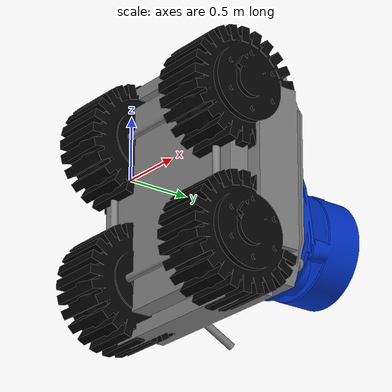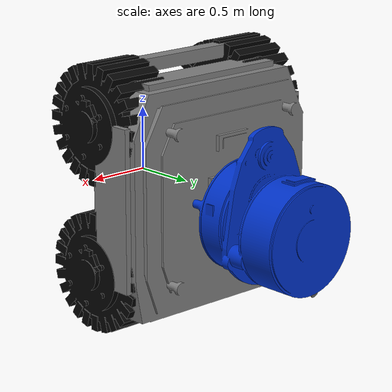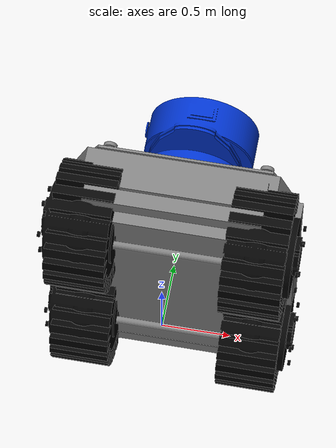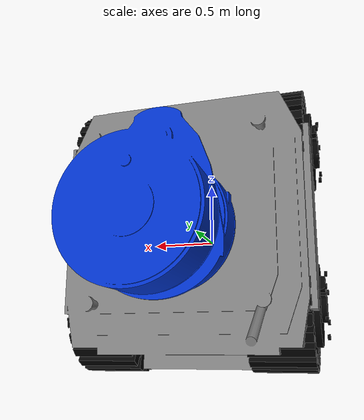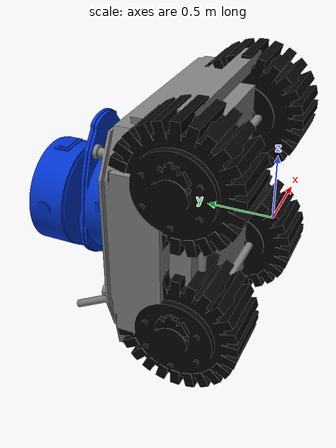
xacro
<?xml version="1.0"?>
<robot name="wave_rover" xmlns:xacro="http://www.ros.org/wiki/xacro">

  <material name="gray"><color rgba="0.5 0.5 0.5 1"/></material>
  <material name="black"><color rgba="0.02 0.02 0.02 1"/></material>
  <material name="blue"><color rgba="0.0 0.2 0.8 1"/></material>

  <link name="base_link">
    <visual>
      <origin xyz="0 0 0" rpy="0 0 0"/>
      <geometry>
        <mesh filename="package://rover_description/meshes/chassis.stl" scale="0.001 0.001 0.001"/>
      </geometry>
      <material name="gray"/>
    </visual>
    <collision>
      <origin xyz="0 0 0.10" rpy="0 0 0"/>
      <geometry><box size="0.60 0.40 0.20"/></geometry>
    </collision>
    <inertial>
      <origin xyz="0 0 0.10" rpy="0 0 0"/>
      <mass value="8.0"/>
      <inertia ixx="0.15" ixy="0" ixz="0" iyy="0.25" iyz="0" izz="0.30"/>
    </inertial>
  </link>

  <link name="front_left_wheel_link">
    <visual>
      <origin xyz="0 0 0" rpy="0 0 0"/>
      <geometry><mesh filename="package://rover_description/meshes/wheel_fl.stl" scale="0.001 0.001 0.001"/></geometry>
      <material name="black"/>
    </visual>
  </link>
  <joint name="front_left_wheel_joint" type="fixed">
    <parent link="base_link"/>
    <child link="front_left_wheel_link"/>
    <origin xyz="0 0 0" rpy="0 0 0"/>
  </joint>

  <link name="front_right_wheel_link">
    <visual>
      <origin xyz="0 0 0" rpy="0 0 0"/>
      <geometry><mesh filename="package://rover_description/meshes/wheel_fr.stl" scale="0.001 0.001 0.001"/></geometry>
      <material name="black"/>
    </visual>
  </link>
  <joint name="front_right_wheel_joint" type="fixed">
    <parent link="base_link"/>
    <child link="front_right_wheel_link"/>
    <origin xyz="0 0 0" rpy="0 0 0"/>
  </joint>

  <link name="rear_left_wheel_link">
    <visual>
      <origin xyz="0 0 0" rpy="0 0 0"/>
      <geometry><mesh filename="package://rover_description/meshes/wheel_rl.stl" scale="0.001 0.001 0.001"/></geometry>
      <material name="black"/>
    </visual>
  </link>
  <joint name="rear_left_wheel_joint" type="fixed">
    <parent link="base_link"/>
    <child link="rear_left_wheel_link"/>
    <origin xyz="0 0 0" rpy="0 0 0"/>
  </joint>

  <link name="rear_right_wheel_link">
    <visual>
      <origin xyz="0 0 0" rpy="0 0 0"/>
      <geometry><mesh filename="package://rover_description/meshes/wheel_rr.stl" scale="0.001 0.001 0.001"/></geometry>
      <material name="black"/>
    </visual>
  </link>
  <joint name="rear_right_wheel_joint" type="fixed">
    <parent link="base_link"/>
    <child link="rear_right_wheel_link"/>
    <origin xyz="0 0 0" rpy="0 0 0"/>
  </joint>

  <link name="lidar_link">
    <visual>
      <origin xyz="0 0 0" rpy="0 0 0"/>
      <geometry><mesh filename="package://rover_description/meshes/lidar_sensor.stl" scale="0.001 0.001 0.001"/></geometry>
      <material name="blue"/>
    </visual>
  </link>
  <joint name="lidar_joint" type="fixed">
    <parent link="base_link"/>
    <child link="lidar_link"/>
    <origin xyz="0 0 0" rpy="0 0 0"/>
  </joint>

</robot>
